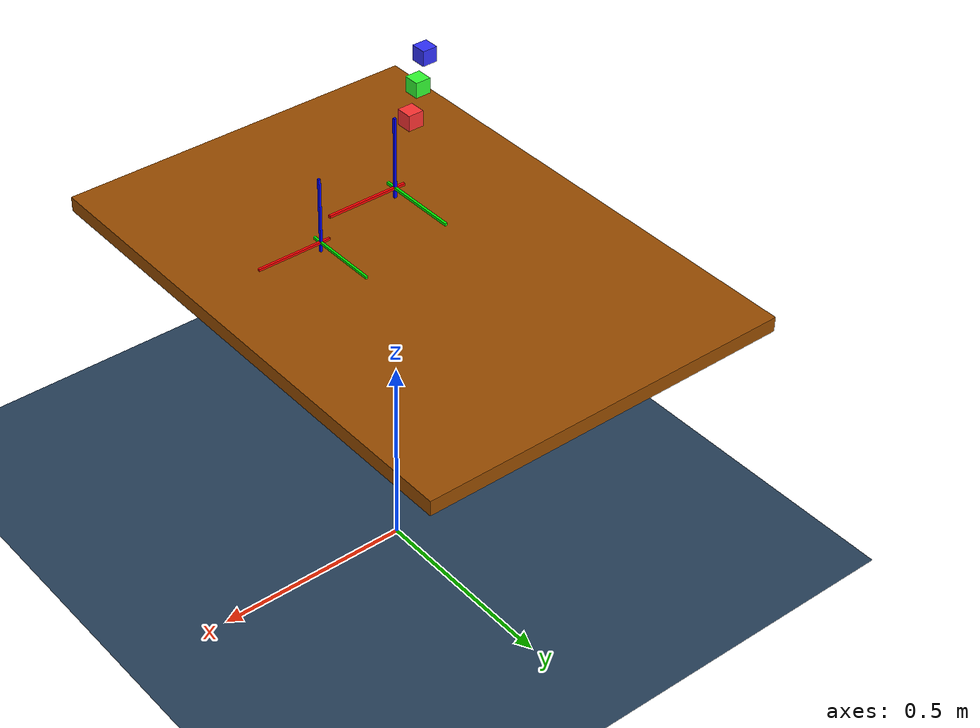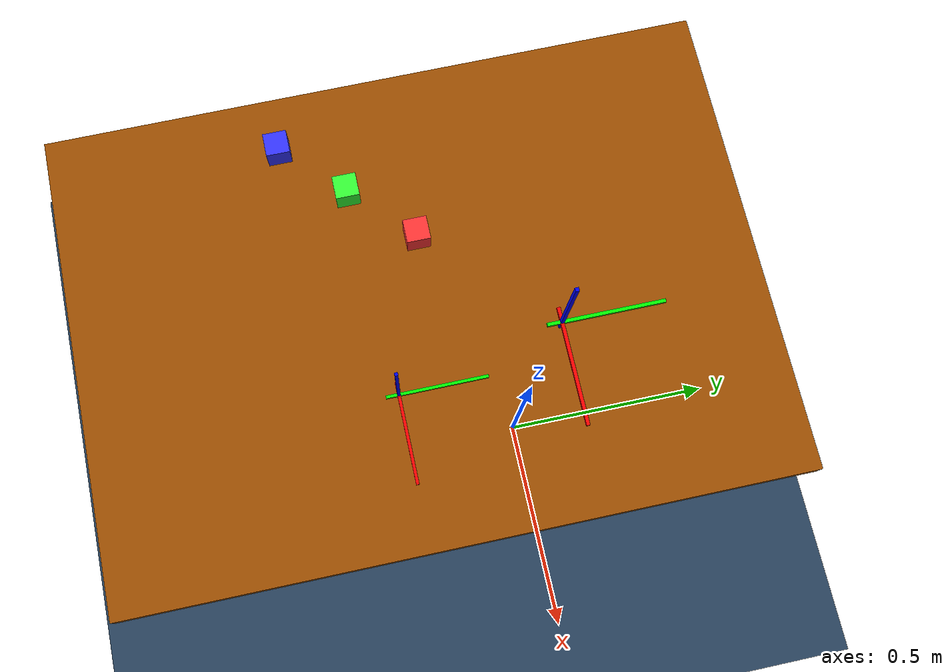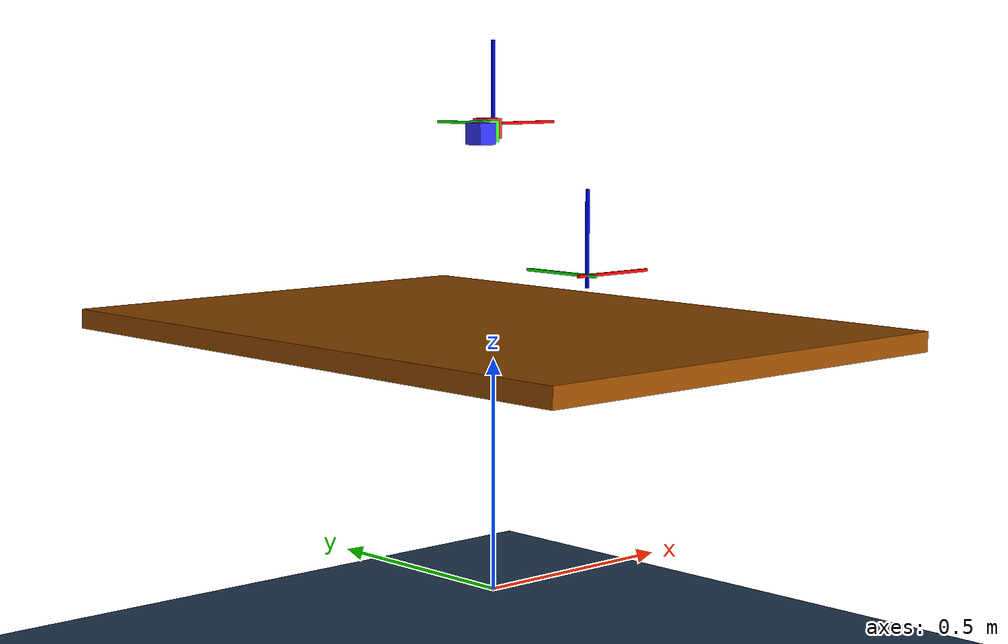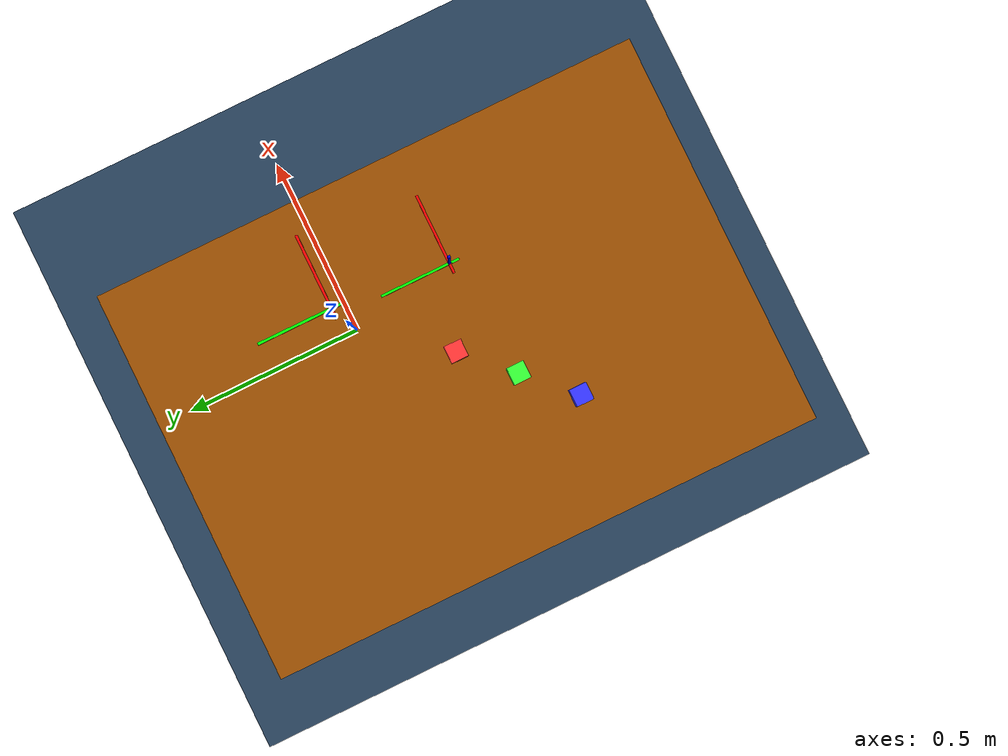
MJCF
<mujoco model="mocap test">
    <asset>
        <texture type="skybox" builtin="gradient" rgb1="0.3 0.5 0.7" rgb2="0 0 0" width="512" height="3072"/>
        <texture type="2d" name="groundplane" builtin="checker" mark="edge" rgb1="0.2 0.3 0.4" rgb2="0.1 0.2 0.3"
          markrgb="0.8 0.8 0.8" width="300" height="300"/>
        <material name="groundplane" texture="groundplane" texuniform="true" texrepeat="5 5" reflectance="0.2"/>
    </asset>

    <worldbody>
        <light pos="0 0 1"/>
        <light pos="0.3 0 1.5" dir="0 0 -1" directional="true"/>
        <geom name="floor" pos="0 0 -0.1" size="0 0 0.05" type="plane" material="groundplane"/>

        <body name="sticky_cube" pos="-0.2 -0.2 1">
          <freejoint/>
          <geom type="box" size="0.02 0.02 0.02" rgba="1 0.2 0.2 1" condim="6" priority="1"
            friction="0.5 0.01 0.003"/>
        </body>

        <body name="sticky_cube_2 " pos="-0.3 -0.3 1">
          <freejoint/>
          <geom type="box" size="0.02 0.02 0.02" rgba="0.2 1 0.2 1" condim="6" priority="1"
            friction="0.5 0.01 0.003"/>
        </body>

        <body name="sticky_cube_3" pos="-0.4 -0.4 1">
          <freejoint/>
          <geom type="box" size="0.02 0.02 0.02" rgba="0.2 0.2 1 1" condim="6" priority="1"
            friction="0.5 0.01 0.003"/>
        </body>

        <body name="table" pos="-0.2 -0.2 0.6">
          <geom type="box" size="0.5 0.7 0.02" rgba="0.6 0.3 0 1"/>
        </body>

        <body mocap="true" name="mocap_wrist_right" pos="0 -0.28 0.7">
          <site pos="0 0 0.075" size="0.003 0.003 0.1" type="box" name="mocap_wrist_right_left_site1" rgba="0 0 1 1"/>
          <site pos="0 0.075 0" size="0.003 0.1 0.003" type="box" name="mocap_wrist_right_left_site2" rgba="0 1 0 1"/>
          <site pos="0.075 0 0" size="0.1 0.003 0.003" type="box" name="mocap_wrist_right_left_site3" rgba="1 0 0 1"/>

        </body>

        <body mocap="true" name="nested" pos="0 0 1">
                <site pos="0 0 0.075" size="0.003 0.003 0.1" type="box" name="nested_site1" rgba="0 0 1 1"/>
                <site pos="0 0.075 0" size="0.003 0.1 0.003" type="box" name="nested_left_site2" rgba="0 1 0 1"/>
                <site pos="0.075 0 0" size="0.1 0.003 0.003" type="box" name="nested_left_site3" rgba="1 0 0 1"/>
            </body>
    </worldbody>
</mujoco>
